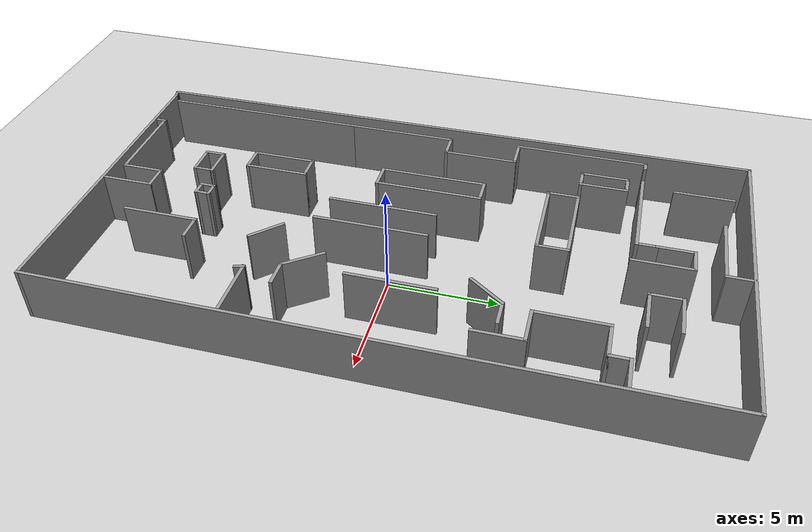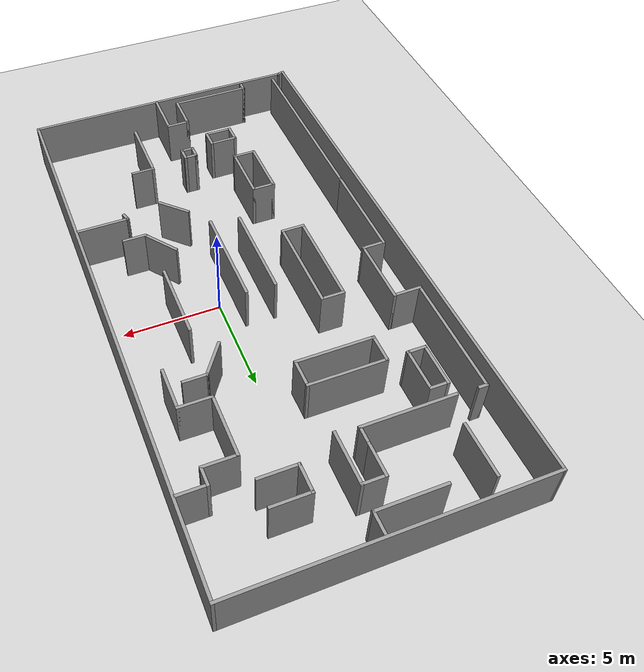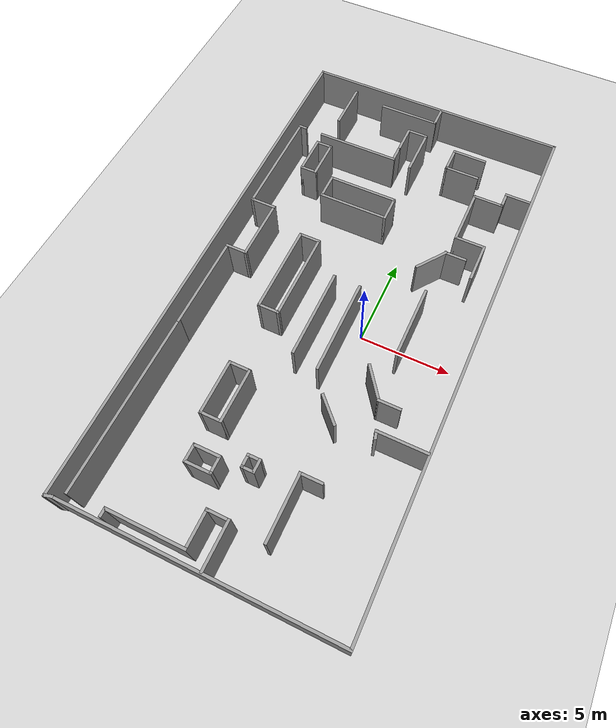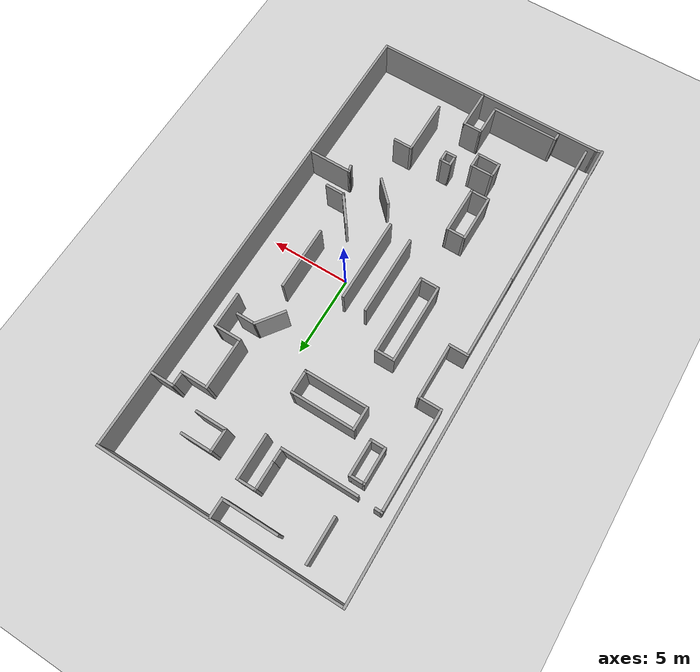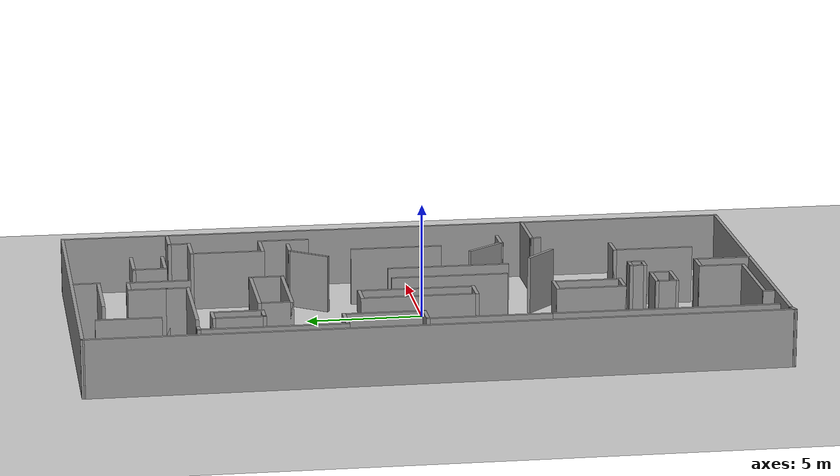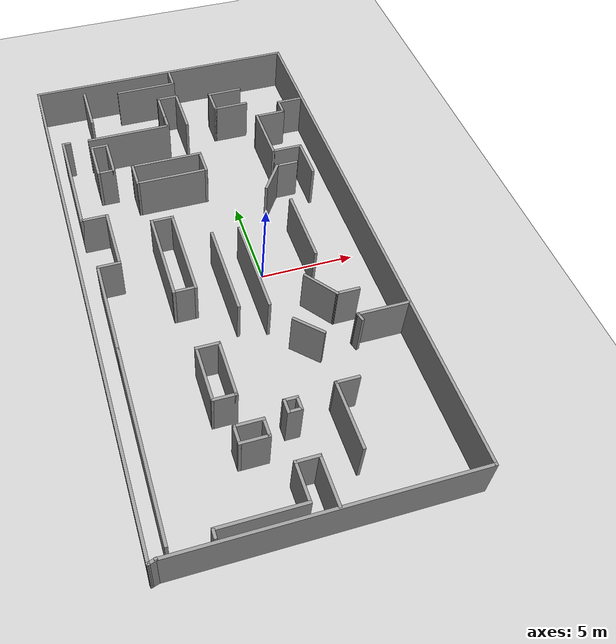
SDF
<sdf version="1.7">
 <world name="default">
  <light name="sun" type="directional">
   <pose>0 0 10 0 -0 0</pose>
   <diffuse>0.8 0.8 0.8 1</diffuse>
   <specular>0.2 0.2 0.2 1</specular>
   <attenuation>
    <range>1000</range>
    <constant>0.9</constant>
    <linear>0.01</linear>
    <quadratic>0.001</quadratic>
   </attenuation>
   <direction>-0.5 0.1 -0.9</direction>
   <spot><inner_angle>0</inner_angle><outer_angle>0</outer_angle><falloff>0</falloff></spot>
  </light>
  <model name="ground_plane">
   <static>1</static>
   <link name="link">
    <collision name="collision">
     <geometry><plane><normal>0 0 1</normal><size>100 100</size></plane></geometry>
     <surface><friction><ode><mu>100</mu><mu2>50</mu2></ode></friction></surface>
    </collision>
    <visual name="visual">
     <cast_shadows>0</cast_shadows>
     <geometry><plane><normal>0 0 1</normal><size>100 100</size></plane></geometry>
     <material>
      <script><uri>file://media/materials/scripts/gazebo.material</uri><name>Gazebo/Grey</name></script>
     </material>
    </visual>
   </link>
  </model>
  <gravity>0 0 -9.8</gravity>
  <magnetic_field>6e-06 2.3e-05 -4.2e-05</magnetic_field>
  <atmosphere type="adiabatic"/>
  <physics type="ode">
   <max_step_size>0.001</max_step_size>
   <real_time_factor>1</real_time_factor>
   <real_time_update_rate>1000</real_time_update_rate>
  </physics>
  <scene><ambient>0.4 0.4 0.4 1</ambient><background>0.7 0.7 0.7 1</background><shadows>1</shadows></scene>
  <audio><device>default</device></audio>
  <spherical_coordinates>
   <surface_model>EARTH_WGS84</surface_model>
   <latitude_deg>0</latitude_deg>
   <longitude_deg>0</longitude_deg>
   <elevation>0</elevation>
   <heading_deg>0</heading_deg>
  </spherical_coordinates>
  <model name="factory2">
   <pose>-1.85262 0.4469 0 0 -0 0</pose>
   <link name="Wall_0">
    <collision name="Wall_0_Collision">
     <geometry><box><size>15.25 0.15 2.5</size></box></geometry>
     <pose>0 0 1.25 0 -0 0</pose>
    </collision>
    <visual name="Wall_0_Visual">
     <pose>0 0 1.25 0 -0 0</pose>
     <geometry><box><size>15.25 0.15 2.5</size></box></geometry>
     <material>
      <script><uri>file://media/materials/scripts/gazebo.material</uri><name>Gazebo/Grey</name></script>
      <ambient>1 1 1 1</ambient>
     </material>
     <meta><layer>0</layer></meta>
    </visual>
    <pose>0.000205 14.7285 0 0 -0 0</pose>
   </link>
   <link name="Wall_1">
    <collision name="Wall_1_Collision">
     <geometry><box><size>29.5 0.15 2.5</size></box></geometry>
     <pose>0 0 1.25 0 -0 0</pose>
    </collision>
    <visual name="Wall_1_Visual">
     <pose>0 0 1.25 0 -0 0</pose>
     <geometry><box><size>29.5 0.15 2.5</size></box></geometry>
     <material>
      <script><uri>file://media/materials/scripts/gazebo.material</uri><name>Gazebo/Grey</name></script>
      <ambient>1 1 1 1</ambient>
     </material>
     <meta><layer>0</layer></meta>
    </visual>
    <pose>7.55021 0.053515 0 0 -0 -1.5708</pose>
   </link>
   <link name="Wall_11">
    <collision name="Wall_11_Collision">
     <geometry><box><size>2.75 0.15 2.5</size></box></geometry>
     <pose>0 0 1.25 0 -0 0</pose>
    </collision>
    <visual name="Wall_11_Visual">
     <pose>0 0 1.25 0 -0 0</pose>
     <geometry><box><size>2.75 0.15 2.5</size></box></geometry>
     <material>
      <script><uri>file://media/materials/scripts/gazebo.material</uri><name>Gazebo/Grey</name></script>
      <ambient>1 1 1 1</ambient>
     </material>
     <meta><layer>0</layer></meta>
    </visual>
    <pose>-4.89928 12.6777 0 0 -0 -1.5708</pose>
   </link>
   <link name="Wall_13">
    <collision name="Wall_13_Collision">
     <geometry><box><size>1.25 0.15 2.5</size></box></geometry>
     <pose>0 0 1.25 0 -0 0</pose>
    </collision>
    <visual name="Wall_13_Visual">
     <pose>0 0 1.25 0 -0 0</pose>
     <geometry><box><size>1.25 0.15 2.5</size></box></geometry>
     <material>
      <script><uri>file://media/materials/scripts/gazebo.material</uri><name>Gazebo/Grey</name></script>
      <ambient>1 1 1 1</ambient>
     </material>
     <meta><layer>0</layer></meta>
    </visual>
    <pose>-0.180831 12.3469 0 0 -0 3.14159</pose>
   </link>
   <link name="Wall_14">
    <collision name="Wall_14_Collision">
     <geometry><box><size>1.75 0.15 2.5</size></box></geometry>
     <pose>0 0 1.25 0 -0 0</pose>
    </collision>
    <visual name="Wall_14_Visual">
     <pose>0 0 1.25 0 -0 0</pose>
     <geometry><box><size>1.75 0.15 2.5</size></box></geometry>
     <material>
      <script><uri>file://media/materials/scripts/gazebo.material</uri><name>Gazebo/Grey</name></script>
      <ambient>1 1 1 1</ambient>
     </material>
     <meta><layer>0</layer></meta>
    </visual>
    <pose>-0.730831 11.5469 0 0 -0 -1.5708</pose>
   </link>
   <link name="Wall_15">
    <collision name="Wall_15_Collision">
     <geometry><box><size>1 0.15 2.5</size></box></geometry>
     <pose>0 0 1.25 0 -0 0</pose>
    </collision>
    <visual name="Wall_15_Visual">
     <pose>0 0 1.25 0 -0 0</pose>
     <geometry><box><size>1 0.15 2.5</size></box></geometry>
     <material>
      <script><uri>file://media/materials/scripts/gazebo.material</uri><name>Gazebo/Grey</name></script>
      <ambient>1 1 1 1</ambient>
     </material>
     <meta><layer>0</layer></meta>
    </visual>
    <pose>-0.730831 10.3219 0 0 -0 -1.5708</pose>
   </link>
   <link name="Wall_16">
    <collision name="Wall_16_Collision">
     <geometry><box><size>4.75 0.15 2.5</size></box></geometry>
     <pose>0 0 1.25 0 -0 0</pose>
    </collision>
    <visual name="Wall_16_Visual">
     <pose>0 0 1.25 0 -0 0</pose>
     <geometry><box><size>4.75 0.15 2.5</size></box></geometry>
     <material>
      <script><uri>file://media/materials/scripts/gazebo.material</uri><name>Gazebo/Grey</name></script>
      <ambient>1 1 1 1</ambient>
     </material>
     <meta><layer>0</layer></meta>
    </visual>
    <pose>-3.03083 9.89686 0 0 -0 3.14159</pose>
   </link>
   <link name="Wall_18">
    <collision name="Wall_18_Collision">
     <geometry><box><size>2.75 0.15 2.5</size></box></geometry>
     <pose>0 0 1.25 0 -0 0</pose>
    </collision>
    <visual name="Wall_18_Visual">
     <pose>0 0 1.25 0 -0 0</pose>
     <geometry><box><size>2.75 0.15 2.5</size></box></geometry>
     <material>
      <script><uri>file://media/materials/scripts/gazebo.material</uri><name>Gazebo/Grey</name></script>
      <ambient>1 1 1 1</ambient>
     </material>
     <meta><layer>0</layer></meta>
    </visual>
    <pose>0.369169 11.0469 0 0 -0 -1.5708</pose>
   </link>
   <link name="Wall_2">
    <collision name="Wall_2_Collision">
     <geometry><box><size>14.75 0.15 2.5</size></box></geometry>
     <pose>0 0 1.25 0 -0 0</pose>
    </collision>
    <visual name="Wall_2_Visual">
     <pose>0 0 1.25 0 -0 0</pose>
     <geometry><box><size>14.75 0.15 2.5</size></box></geometry>
     <material>
      <script><uri>file://media/materials/scripts/gazebo.material</uri><name>Gazebo/Grey</name></script>
      <ambient>1 1 1 1</ambient>
     </material>
     <meta><layer>0</layer></meta>
    </visual>
    <pose>0.250205 -14.6215 0 0 -0 3.14159</pose>
   </link>
   <link name="Wall_20">
    <collision name="Wall_20_Collision">
     <geometry><box><size>2 0.15 2.5</size></box></geometry>
     <pose>0 0 1.25 0 -0 0</pose>
    </collision>
    <visual name="Wall_20_Visual">
     <pose>0 0 1.25 0 -0 0</pose>
     <geometry><box><size>2 0.15 2.5</size></box></geometry>
     <material>
      <script><uri>file://media/materials/scripts/gazebo.material</uri><name>Gazebo/Grey</name></script>
      <ambient>1 1 1 1</ambient>
     </material>
     <meta><layer>0</layer></meta>
    </visual>
    <pose>3.24721 11.9486 0 0 -0 3.14159</pose>
   </link>
   <link name="Wall_21">
    <collision name="Wall_21_Collision">
     <geometry><box><size>1.5 0.15 2.5</size></box></geometry>
     <pose>0 0 1.25 0 -0 0</pose>
    </collision>
    <visual name="Wall_21_Visual">
     <pose>0 0 1.25 0 -0 0</pose>
     <geometry><box><size>1.5 0.15 2.5</size></box></geometry>
     <material>
      <script><uri>file://media/materials/scripts/gazebo.material</uri><name>Gazebo/Grey</name></script>
      <ambient>1 1 1 1</ambient>
     </material>
     <meta><layer>0</layer></meta>
    </visual>
    <pose>2.32221 11.2736 0 0 -0 -1.5708</pose>
   </link>
   <link name="Wall_22">
    <collision name="Wall_22_Collision">
     <geometry><box><size>2 0.15 2.5</size></box></geometry>
     <pose>0 0 1.25 0 -0 0</pose>
    </collision>
    <visual name="Wall_22_Visual">
     <pose>0 0 1.25 0 -0 0</pose>
     <geometry><box><size>2 0.15 2.5</size></box></geometry>
     <material>
      <script><uri>file://media/materials/scripts/gazebo.material</uri><name>Gazebo/Grey</name></script>
      <ambient>1 1 1 1</ambient>
     </material>
     <meta><layer>0</layer></meta>
    </visual>
    <pose>3.24721 10.5986 0 0 -0 0</pose>
   </link>
   <link name="Wall_24">
    <collision name="Wall_24_Collision">
     <geometry><box><size>1.5 0.15 2.5</size></box></geometry>
     <pose>0 0 1.25 0 -0 0</pose>
    </collision>
    <visual name="Wall_24_Visual">
     <pose>0 0 1.25 0 -0 0</pose>
     <geometry><box><size>1.5 0.15 2.5</size></box></geometry>
     <material>
      <script><uri>file://media/materials/scripts/gazebo.material</uri><name>Gazebo/Grey</name></script>
      <ambient>1 1 1 1</ambient>
     </material>
     <meta><layer>0</layer></meta>
    </visual>
    <pose>6.76561 10.1328 0 0 -0 3.14159</pose>
   </link>
   <link name="Wall_25">
    <collision name="Wall_25_Collision">
     <geometry><box><size>1 0.15 2.5</size></box></geometry>
     <pose>0 0 1.25 0 -0 0</pose>
    </collision>
    <visual name="Wall_25_Visual">
     <pose>0 0 1.25 0 -0 0</pose>
     <geometry><box><size>1 0.15 2.5</size></box></geometry>
     <material>
      <script><uri>file://media/materials/scripts/gazebo.material</uri><name>Gazebo/Grey</name></script>
      <ambient>1 1 1 1</ambient>
     </material>
     <meta><layer>0</layer></meta>
    </visual>
    <pose>6.09061 9.70783 0 0 -0 -1.5708</pose>
   </link>
   <link name="Wall_26">
    <collision name="Wall_26_Collision">
     <geometry><box><size>1.75 0.15 2.5</size></box></geometry>
     <pose>0 0 1.25 0 -0 0</pose>
    </collision>
    <visual name="Wall_26_Visual">
     <pose>0 0 1.25 0 -0 0</pose>
     <geometry><box><size>1.75 0.15 2.5</size></box></geometry>
     <material>
      <script><uri>file://media/materials/scripts/gazebo.material</uri><name>Gazebo/Grey</name></script>
      <ambient>1 1 1 1</ambient>
     </material>
     <meta><layer>0</layer></meta>
    </visual>
    <pose>5.29061 9.28283 0 0 -0 3.14159</pose>
   </link>
   <link name="Wall_27">
    <collision name="Wall_27_Collision">
     <geometry><box><size>3.25 0.15 2.5</size></box></geometry>
     <pose>0 0 1.25 0 -0 0</pose>
    </collision>
    <visual name="Wall_27_Visual">
     <pose>0 0 1.25 0 -0 0</pose>
     <geometry><box><size>3.25 0.15 2.5</size></box></geometry>
     <material>
      <script><uri>file://media/materials/scripts/gazebo.material</uri><name>Gazebo/Grey</name></script>
      <ambient>1 1 1 1</ambient>
     </material>
     <meta><layer>0</layer></meta>
    </visual>
    <pose>4.49061 7.73283 0 0 -0 -1.5708</pose>
   </link>
   <link name="Wall_28">
    <collision name="Wall_28_Collision">
     <geometry><box><size>1.75 0.15 2.5</size></box></geometry>
     <pose>0 0 1.25 0 -0 0</pose>
    </collision>
    <visual name="Wall_28_Visual">
     <pose>0 0 1.25 0 -0 0</pose>
     <geometry><box><size>1.75 0.15 2.5</size></box></geometry>
     <material>
      <script><uri>file://media/materials/scripts/gazebo.material</uri><name>Gazebo/Grey</name></script>
      <ambient>1 1 1 1</ambient>
     </material>
     <meta><layer>0</layer></meta>
    </visual>
    <pose>5.29061 6.18283 0 0 -0 0</pose>
   </link>
   <link name="Wall_29">
    <collision name="Wall_29_Collision">
     <geometry><box><size>2.25 0.15 2.5</size></box></geometry>
     <pose>0 0 1.25 0 -0 0</pose>
    </collision>
    <visual name="Wall_29_Visual">
     <pose>0 0 1.25 0 -0 0</pose>
     <geometry><box><size>2.25 0.15 2.5</size></box></geometry>
     <material>
      <script><uri>file://media/materials/scripts/gazebo.material</uri><name>Gazebo/Grey</name></script>
      <ambient>1 1 1 1</ambient>
     </material>
     <meta><layer>0</layer></meta>
    </visual>
    <pose>6.09061 5.13283 0 0 -0 -1.5708</pose>
   </link>
   <link name="Wall_31">
    <collision name="Wall_31_Collision">
     <geometry><box><size>1.25 0.15 2.5</size></box></geometry>
     <pose>0 0 1.25 0 -0 0</pose>
    </collision>
    <visual name="Wall_31_Visual">
     <pose>0 0 1.25 0 -0 0</pose>
     <geometry><box><size>1.25 0.15 2.5</size></box></geometry>
     <material>
      <script><uri>file://media/materials/scripts/gazebo.material</uri><name>Gazebo/Grey</name></script>
      <ambient>1 1 1 1</ambient>
     </material>
     <meta><layer>0</layer></meta>
    </visual>
    <pose>4.88461 4.99678 0 0 -0 3.14159</pose>
   </link>
   <link name="Wall_32">
    <collision name="Wall_32_Collision">
     <geometry><box><size>1.97339 0.15 2.5</size></box></geometry>
     <pose>0 0 1.25 0 -0 0</pose>
    </collision>
    <visual name="Wall_32_Visual">
     <pose>0 0 1.25 0 -0 0</pose>
     <geometry><box><size>1.97339 0.15 2.5</size></box></geometry>
     <material>
      <script><uri>file://media/materials/scripts/gazebo.material</uri><name>Gazebo/Grey</name></script>
      <ambient>1 1 1 1</ambient>
     </material>
     <meta><layer>0</layer></meta>
    </visual>
    <pose>3.79514 4.26182 0 0 -0 -2.20398</pose>
   </link>
   <link name="Wall_34">
    <collision name="Wall_34_Collision">
     <geometry><box><size>4 0.15 2.5</size></box></geometry>
     <pose>0 0 1.25 0 -0 0</pose>
    </collision>
    <visual name="Wall_34_Visual">
     <pose>0 0 1.25 0 -0 0</pose>
     <geometry><box><size>4 0.15 2.5</size></box></geometry>
     <material>
      <script><uri>file://media/materials/scripts/gazebo.material</uri><name>Gazebo/Grey</name></script>
      <ambient>1 1 1 1</ambient>
     </material>
     <meta><layer>0</layer></meta>
    </visual>
    <pose>4.22409 0.356764 0 0 -0 -1.5708</pose>
   </link>
   <link name="Wall_36">
    <collision name="Wall_36_Collision">
     <geometry><box><size>2.02803 0.15 2.5</size></box></geometry>
     <pose>0 0 1.25 0 -0 0</pose>
    </collision>
    <visual name="Wall_36_Visual">
     <pose>0 0 1.25 0 -0 0</pose>
     <geometry><box><size>2.02803 0.15 2.5</size></box></geometry>
     <material>
      <script><uri>file://media/materials/scripts/gazebo.material</uri><name>Gazebo/Grey</name></script>
      <ambient>1 1 1 1</ambient>
     </material>
     <meta><layer>0</layer></meta>
    </visual>
    <pose>3.80041 -3.55466 0 0 -0 -0.929137</pose>
   </link>
   <link name="Wall_37">
    <collision name="Wall_37_Collision">
     <geometry><box><size>1.2573 0.15 2.5</size></box></geometry>
     <pose>0 0 1.25 0 -0 0</pose>
    </collision>
    <visual name="Wall_37_Visual">
     <pose>0 0 1.25 0 -0 0</pose>
     <geometry><box><size>1.2573 0.15 2.5</size></box></geometry>
     <material>
      <script><uri>file://media/materials/scripts/gazebo.material</uri><name>Gazebo/Grey</name></script>
      <ambient>1 1 1 1</ambient>
     </material>
     <meta><layer>0</layer></meta>
    </visual>
    <pose>4.91581 -4.30691 0 0 -0 0</pose>
   </link>
   <link name="Wall_39">
    <collision name="Wall_39_Collision">
     <geometry><box><size>5.25 0.15 2.5</size></box></geometry>
     <pose>0 0 1.25 0 -0 0</pose>
    </collision>
    <visual name="Wall_39_Visual">
     <pose>0 0 1.25 0 -0 0</pose>
     <geometry><box><size>5.25 0.15 2.5</size></box></geometry>
     <material>
      <script><uri>file://media/materials/scripts/gazebo.material</uri><name>Gazebo/Grey</name></script>
      <ambient>1 1 1 1</ambient>
     </material>
     <meta><layer>0</layer></meta>
    </visual>
    <pose>0.990278 -1.46146 0 0 -0 -1.5708</pose>
   </link>
   <link name="Wall_4">
    <collision name="Wall_4_Collision">
     <geometry><box><size>0.5 0.15 2.5</size></box></geometry>
     <pose>0 0 1.25 0 -0 0</pose>
    </collision>
    <visual name="Wall_4_Visual">
     <pose>0 0 1.25 0 -0 0</pose>
     <geometry><box><size>0.5 0.15 2.5</size></box></geometry>
     <material>
      <script><uri>file://media/materials/scripts/gazebo.material</uri><name>Gazebo/Grey</name></script>
      <ambient>1 1 1 1</ambient>
     </material>
     <meta><layer>0</layer></meta>
    </visual>
    <pose>-7.21883 -14.6668 0 0 -0 -2.87979</pose>
   </link>
   <link name="Wall_41">
    <collision name="Wall_41_Collision">
     <geometry><box><size>5 0.15 2.5</size></box></geometry>
     <pose>0 0 1.25 0 -0 0</pose>
    </collision>
    <visual name="Wall_41_Visual">
     <pose>0 0 1.25 0 -0 0</pose>
     <geometry><box><size>5 0.15 2.5</size></box></geometry>
     <material>
      <script><uri>file://media/materials/scripts/gazebo.material</uri><name>Gazebo/Grey</name></script>
      <ambient>1 1 1 1</ambient>
     </material>
     <meta><layer>0</layer></meta>
    </visual>
    <pose>-0.479636 -1.30187 0 0 -0 -1.5708</pose>
   </link>
   <link name="Wall_43">
    <collision name="Wall_43_Collision">
     <geometry><box><size>1.25 0.15 2.5</size></box></geometry>
     <pose>0 0 1.25 0 -0 0</pose>
    </collision>
    <visual name="Wall_43_Visual">
     <pose>0 0 1.25 0 -0 0</pose>
     <geometry><box><size>1.25 0.15 2.5</size></box></geometry>
     <material>
      <script><uri>file://media/materials/scripts/gazebo.material</uri><name>Gazebo/Grey</name></script>
      <ambient>1 1 1 1</ambient>
     </material>
     <meta><layer>0</layer></meta>
    </visual>
    <pose>-2.73112 2.80056 0 0 -0 0</pose>
   </link>
   <link name="Wall_44">
    <collision name="Wall_44_Collision">
     <geometry><box><size>5 0.15 2.5</size></box></geometry>
     <pose>0 0 1.25 0 -0 0</pose>
    </collision>
    <visual name="Wall_44_Visual">
     <pose>0 0 1.25 0 -0 0</pose>
     <geometry><box><size>5 0.15 2.5</size></box></geometry>
     <material>
      <script><uri>file://media/materials/scripts/gazebo.material</uri><name>Gazebo/Grey</name></script>
      <ambient>1 1 1 1</ambient>
     </material>
     <meta><layer>0</layer></meta>
    </visual>
    <pose>-2.18112 0.375557 0 0 -0 -1.5708</pose>
   </link>
   <link name="Wall_45">
    <collision name="Wall_45_Collision">
     <geometry><box><size>1.25 0.15 2.5</size></box></geometry>
     <pose>0 0 1.25 0 -0 0</pose>
    </collision>
    <visual name="Wall_45_Visual">
     <pose>0 0 1.25 0 -0 0</pose>
     <geometry><box><size>1.25 0.15 2.5</size></box></geometry>
     <material>
      <script><uri>file://media/materials/scripts/gazebo.material</uri><name>Gazebo/Grey</name></script>
      <ambient>1 1 1 1</ambient>
     </material>
     <meta><layer>0</layer></meta>
    </visual>
    <pose>-2.73112 -2.04944 0 0 -0 3.14159</pose>
   </link>
   <link name="Wall_46">
    <collision name="Wall_46_Collision">
     <geometry><box><size>5 0.15 2.5</size></box></geometry>
     <pose>0 0 1.25 0 -0 0</pose>
    </collision>
    <visual name="Wall_46_Visual">
     <pose>0 0 1.25 0 -0 0</pose>
     <geometry><box><size>5 0.15 2.5</size></box></geometry>
     <material>
      <script><uri>file://media/materials/scripts/gazebo.material</uri><name>Gazebo/Grey</name></script>
      <ambient>1 1 1 1</ambient>
     </material>
     <meta><layer>0</layer></meta>
    </visual>
    <pose>-3.28112 0.375557 0 0 -0 1.5708</pose>
   </link>
   <link name="Wall_48">
    <collision name="Wall_48_Collision">
     <geometry><box><size>1.5 0.15 2.5</size></box></geometry>
     <pose>0 0 1.25 0 -0 0</pose>
    </collision>
    <visual name="Wall_48_Visual">
     <pose>0 0 1.25 0 -0 0</pose>
     <geometry><box><size>1.5 0.15 2.5</size></box></geometry>
     <material>
      <script><uri>file://media/materials/scripts/gazebo.material</uri><name>Gazebo/Grey</name></script>
      <ambient>1 1 1 1</ambient>
     </material>
     <meta><layer>0</layer></meta>
    </visual>
    <pose>0.454192 6.44997 0 0 -0 1.5708</pose>
   </link>
   <link name="Wall_49">
    <collision name="Wall_49_Collision">
     <geometry><box><size>4 0.15 2.5</size></box></geometry>
     <pose>0 0 1.25 0 -0 0</pose>
    </collision>
    <visual name="Wall_49_Visual">
     <pose>0 0 1.25 0 -0 0</pose>
     <geometry><box><size>4 0.15 2.5</size></box></geometry>
     <material>
      <script><uri>file://media/materials/scripts/gazebo.material</uri><name>Gazebo/Grey</name></script>
      <ambient>1 1 1 1</ambient>
     </material>
     <meta><layer>0</layer></meta>
    </visual>
    <pose>-1.47081 7.12497 0 0 -0 3.14159</pose>
   </link>
   <link name="Wall_50">
    <collision name="Wall_50_Collision">
     <geometry><box><size>1.5 0.15 2.5</size></box></geometry>
     <pose>0 0 1.25 0 -0 0</pose>
    </collision>
    <visual name="Wall_50_Visual">
     <pose>0 0 1.25 0 -0 0</pose>
     <geometry><box><size>1.5 0.15 2.5</size></box></geometry>
     <material>
      <script><uri>file://media/materials/scripts/gazebo.material</uri><name>Gazebo/Grey</name></script>
      <ambient>1 1 1 1</ambient>
     </material>
     <meta><layer>0</layer></meta>
    </visual>
    <pose>-3.39581 6.44997 0 0 -0 -1.5708</pose>
   </link>
   <link name="Wall_51">
    <collision name="Wall_51_Collision">
     <geometry><box><size>4 0.15 2.5</size></box></geometry>
     <pose>0 0 1.25 0 -0 0</pose>
    </collision>
    <visual name="Wall_51_Visual">
     <pose>0 0 1.25 0 -0 0</pose>
     <geometry><box><size>4 0.15 2.5</size></box></geometry>
     <material>
      <script><uri>file://media/materials/scripts/gazebo.material</uri><name>Gazebo/Grey</name></script>
      <ambient>1 1 1 1</ambient>
     </material>
     <meta><layer>0</layer></meta>
    </visual>
    <pose>-1.47081 5.77497 0 0 -0 0</pose>
   </link>
   <link name="Wall_53">
    <collision name="Wall_53_Collision">
     <geometry><box><size>2.25 0.15 2.5</size></box></geometry>
     <pose>0 0 1.25 0 -0 0</pose>
    </collision>
    <visual name="Wall_53_Visual">
     <pose>0 0 1.25 0 -0 0</pose>
     <geometry><box><size>2.25 0.15 2.5</size></box></geometry>
     <material>
      <script><uri>file://media/materials/scripts/gazebo.material</uri><name>Gazebo/Grey</name></script>
      <ambient>1 1 1 1</ambient>
     </material>
     <meta><layer>0</layer></meta>
    </visual>
    <pose>-4.45705 8.1663 0 0 -0 -1.5708</pose>
   </link>
   <link name="Wall_54">
    <collision name="Wall_54_Collision">
     <geometry><box><size>1 0.15 2.5</size></box></geometry>
     <pose>0 0 1.25 0 -0 0</pose>
    </collision>
    <visual name="Wall_54_Visual">
     <pose>0 0 1.25 0 -0 0</pose>
     <geometry><box><size>1 0.15 2.5</size></box></geometry>
     <material>
      <script><uri>file://media/materials/scripts/gazebo.material</uri><name>Gazebo/Grey</name></script>
      <ambient>1 1 1 1</ambient>
     </material>
     <meta><layer>0</layer></meta>
    </visual>
    <pose>-4.88205 7.1163 0 0 -0 3.14159</pose>
   </link>
   <link name="Wall_55">
    <collision name="Wall_55_Collision">
     <geometry><box><size>2.25 0.15 2.5</size></box></geometry>
     <pose>0 0 1.25 0 -0 0</pose>
    </collision>
    <visual name="Wall_55_Visual">
     <pose>0 0 1.25 0 -0 0</pose>
     <geometry><box><size>2.25 0.15 2.5</size></box></geometry>
     <material>
      <script><uri>file://media/materials/scripts/gazebo.material</uri><name>Gazebo/Grey</name></script>
      <ambient>1 1 1 1</ambient>
     </material>
     <meta><layer>0</layer></meta>
    </visual>
    <pose>-5.30705 8.1663 0 0 -0 1.5708</pose>
   </link>
   <link name="Wall_56">
    <collision name="Wall_56_Collision">
     <geometry><box><size>1 0.15 2.5</size></box></geometry>
     <pose>0 0 1.25 0 -0 0</pose>
    </collision>
    <visual name="Wall_56_Visual">
     <pose>0 0 1.25 0 -0 0</pose>
     <geometry><box><size>1 0.15 2.5</size></box></geometry>
     <material>
      <script><uri>file://media/materials/scripts/gazebo.material</uri><name>Gazebo/Grey</name></script>
      <ambient>1 1 1 1</ambient>
     </material>
     <meta><layer>0</layer></meta>
    </visual>
    <pose>-4.88205 9.2163 0 0 -0 0</pose>
   </link>
   <link name="Wall_58">
    <collision name="Wall_58_Collision">
     <geometry><box><size>0.5 0.15 2.5</size></box></geometry>
     <pose>0 0 1.25 0 -0 0</pose>
    </collision>
    <visual name="Wall_58_Visual">
     <pose>0 0 1.25 0 -0 0</pose>
     <geometry><box><size>0.5 0.15 2.5</size></box></geometry>
     <material>
      <script><uri>file://media/materials/scripts/gazebo.material</uri><name>Gazebo/Grey</name></script>
      <ambient>1 1 1 1</ambient>
     </material>
     <meta><layer>0</layer></meta>
    </visual>
    <pose>-6.63225 9.94982 0 0 -0 3.14159</pose>
   </link>
   <link name="Wall_59">
    <collision name="Wall_59_Collision">
     <geometry><box><size>6.25 0.15 2.5</size></box></geometry>
     <pose>0 0 1.25 0 -0 0</pose>
    </collision>
    <visual name="Wall_59_Visual">
     <pose>0 0 1.25 0 -0 0</pose>
     <geometry><box><size>6.25 0.15 2.5</size></box></geometry>
     <material>
      <script><uri>file://media/materials/scripts/gazebo.material</uri><name>Gazebo/Grey</name></script>
      <ambient>1 1 1 1</ambient>
     </material>
     <meta><layer>0</layer></meta>
    </visual>
    <pose>-6.80725 6.89982 0 0 -0 -1.5708</pose>
   </link>
   <link name="Wall_6">
    <collision name="Wall_6_Collision">
     <geometry><box><size>29.591 0.15 2.5</size></box></geometry>
     <pose>0 0 1.25 0 -0 0</pose>
    </collision>
    <visual name="Wall_6_Visual">
     <pose>0 0 1.25 0 -0 0</pose>
     <geometry><box><size>29.591 0.15 2.5</size></box></geometry>
     <material>
      <script><uri>file://media/materials/scripts/gazebo.material</uri><name>Gazebo/Grey</name></script>
      <ambient>1 1 1 1</ambient>
     </material>
     <meta><layer>0</layer></meta>
    </visual>
    <pose>-7.46883 0.008221 0 0 -0 1.5763</pose>
   </link>
   <link name="Wall_60">
    <collision name="Wall_60_Collision">
     <geometry><box><size>1.5 0.15 2.5</size></box></geometry>
     <pose>0 0 1.25 0 -0 0</pose>
    </collision>
    <visual name="Wall_60_Visual">
     <pose>0 0 1.25 0 -0 0</pose>
     <geometry><box><size>1.5 0.15 2.5</size></box></geometry>
     <material>
      <script><uri>file://media/materials/scripts/gazebo.material</uri><name>Gazebo/Grey</name></script>
      <ambient>1 1 1 1</ambient>
     </material>
     <meta><layer>0</layer></meta>
    </visual>
    <pose>-6.13225 3.84982 0 0 -0 0</pose>
   </link>
   <link name="Wall_61">
    <collision name="Wall_61_Collision">
     <geometry><box><size>3.5 0.15 2.5</size></box></geometry>
     <pose>0 0 1.25 0 -0 0</pose>
    </collision>
    <visual name="Wall_61_Visual">
     <pose>0 0 1.25 0 -0 0</pose>
     <geometry><box><size>3.5 0.15 2.5</size></box></geometry>
     <material>
      <script><uri>file://media/materials/scripts/gazebo.material</uri><name>Gazebo/Grey</name></script>
      <ambient>1 1 1 1</ambient>
     </material>
     <meta><layer>0</layer></meta>
    </visual>
    <pose>-5.45725 2.17482 0 0 -0 -1.5708</pose>
   </link>
   <link name="Wall_62">
    <collision name="Wall_62_Collision">
     <geometry><box><size>1.25 0.15 2.5</size></box></geometry>
     <pose>0 0 1.25 0 -0 0</pose>
    </collision>
    <visual name="Wall_62_Visual">
     <pose>0 0 1.25 0 -0 0</pose>
     <geometry><box><size>1.25 0.15 2.5</size></box></geometry>
     <material>
      <script><uri>file://media/materials/scripts/gazebo.material</uri><name>Gazebo/Grey</name></script>
      <ambient>1 1 1 1</ambient>
     </material>
     <meta><layer>0</layer></meta>
    </visual>
    <pose>-6.00725 0.499821 0 0 -0 3.14159</pose>
   </link>
   <link name="Wall_64">
    <collision name="Wall_64_Collision">
     <geometry><box><size>5.25 0.15 2.5</size></box></geometry>
     <pose>0 0 1.25 0 -0 0</pose>
    </collision>
    <visual name="Wall_64_Visual">
     <pose>0 0 1.25 0 -0 0</pose>
     <geometry><box><size>5.25 0.15 2.5</size></box></geometry>
     <material>
      <script><uri>file://media/materials/scripts/gazebo.material</uri><name>Gazebo/Grey</name></script>
      <ambient>1 1 1 1</ambient>
     </material>
     <meta><layer>0</layer></meta>
    </visual>
    <pose>-6.55725 -2.05018 0 0 -0 -1.5708</pose>
   </link>
   <link name="Wall_66">
    <collision name="Wall_66_Collision">
     <geometry><box><size>9.75 0.15 2.5</size></box></geometry>
     <pose>0 0 1.25 0 -0 0</pose>
    </collision>
    <visual name="Wall_66_Visual">
     <pose>0 0 1.25 0 -0 0</pose>
     <geometry><box><size>9.75 0.15 2.5</size></box></geometry>
     <material>
      <script><uri>file://media/materials/scripts/gazebo.material</uri><name>Gazebo/Grey</name></script>
      <ambient>1 1 1 1</ambient>
     </material>
     <meta><layer>0</layer></meta>
    </visual>
    <pose>-6.55725 -9.40018 0 0 -0 -1.5708</pose>
   </link>
   <link name="Wall_68">
    <collision name="Wall_68_Collision">
     <geometry><box><size>3 0.15 2.5</size></box></geometry>
     <pose>0 0 1.25 0 -0 0</pose>
    </collision>
    <visual name="Wall_68_Visual">
     <pose>0 0 1.25 0 -0 0</pose>
     <geometry><box><size>3 0.15 2.5</size></box></geometry>
     <material>
      <script><uri>file://media/materials/scripts/gazebo.material</uri><name>Gazebo/Grey</name></script>
      <ambient>1 1 1 1</ambient>
     </material>
     <meta><layer>0</layer></meta>
    </visual>
    <pose>-1.95984 -6.96626 0 0 -0 -1.5708</pose>
   </link>
   <link name="Wall_69">
    <collision name="Wall_69_Collision">
     <geometry><box><size>1.25 0.15 2.5</size></box></geometry>
     <pose>0 0 1.25 0 -0 0</pose>
    </collision>
    <visual name="Wall_69_Visual">
     <pose>0 0 1.25 0 -0 0</pose>
     <geometry><box><size>1.25 0.15 2.5</size></box></geometry>
     <material>
      <script><uri>file://media/materials/scripts/gazebo.material</uri><name>Gazebo/Grey</name></script>
      <ambient>1 1 1 1</ambient>
     </material>
     <meta><layer>0</layer></meta>
    </visual>
    <pose>-2.50984 -8.39126 0 0 -0 3.14159</pose>
   </link>
   <link name="Wall_70">
    <collision name="Wall_70_Collision">
     <geometry><box><size>3 0.15 2.5</size></box></geometry>
     <pose>0 0 1.25 0 -0 0</pose>
    </collision>
    <visual name="Wall_70_Visual">
     <pose>0 0 1.25 0 -0 0</pose>
     <geometry><box><size>3 0.15 2.5</size></box></geometry>
     <material>
      <script><uri>file://media/materials/scripts/gazebo.material</uri><name>Gazebo/Grey</name></script>
      <ambient>1 1 1 1</ambient>
     </material>
     <meta><layer>0</layer></meta>
    </visual>
    <pose>-3.05984 -6.96626 0 0 -0 1.5708</pose>
   </link>
   <link name="Wall_71">
    <collision name="Wall_71_Collision">
     <geometry><box><size>1.25 0.15 2.5</size></box></geometry>
     <pose>0 0 1.25 0 -0 0</pose>
    </collision>
    <visual name="Wall_71_Visual">
     <pose>0 0 1.25 0 -0 0</pose>
     <geometry><box><size>1.25 0.15 2.5</size></box></geometry>
     <material>
      <script><uri>file://media/materials/scripts/gazebo.material</uri><name>Gazebo/Grey</name></script>
      <ambient>1 1 1 1</ambient>
     </material>
     <meta><layer>0</layer></meta>
    </visual>
    <pose>-2.50984 -5.54126 0 0 -0 0</pose>
   </link>
   <link name="Wall_73">
    <collision name="Wall_73_Collision">
     <geometry><box><size>1.74981 0.15 2.5</size></box></geometry>
     <pose>0 0 1.25 0 -0 0</pose>
    </collision>
    <visual name="Wall_73_Visual">
     <pose>0 0 1.25 0 -0 0</pose>
     <geometry><box><size>1.74981 0.15 2.5</size></box></geometry>
     <material>
      <script><uri>file://media/materials/scripts/gazebo.material</uri><name>Gazebo/Grey</name></script>
      <ambient>1 1 1 1</ambient>
     </material>
     <meta><layer>0</layer></meta>
    </visual>
    <pose>2.39292 -5.73852 0 0 -0 -0.785398</pose>
   </link>
   <link name="Wall_75">
    <collision name="Wall_75_Collision">
     <geometry><box><size>1.25 0.15 2.5</size></box></geometry>
     <pose>0 0 1.25 0 -0 0</pose>
    </collision>
    <visual name="Wall_75_Visual">
     <pose>0 0 1.25 0 -0 0</pose>
     <geometry><box><size>1.25 0.15 2.5</size></box></geometry>
     <material>
      <script><uri>file://media/materials/scripts/gazebo.material</uri><name>Gazebo/Grey</name></script>
      <ambient>1 1 1 1</ambient>
     </material>
     <meta><layer>0</layer></meta>
    </visual>
    <pose>3.0659 -9.03925 0 0 -0 3.14159</pose>
   </link>
   <link name="Wall_76">
    <collision name="Wall_76_Collision">
     <geometry><box><size>3.5 0.15 2.5</size></box></geometry>
     <pose>0 0 1.25 0 -0 0</pose>
    </collision>
    <visual name="Wall_76_Visual">
     <pose>0 0 1.25 0 -0 0</pose>
     <geometry><box><size>3.5 0.15 2.5</size></box></geometry>
     <material>
      <script><uri>file://media/materials/scripts/gazebo.material</uri><name>Gazebo/Grey</name></script>
      <ambient>1 1 1 1</ambient>
     </material>
     <meta><layer>0</layer></meta>
    </visual>
    <pose>2.5159 -10.7142 0 0 -0 -1.5708</pose>
   </link>
   <link name="Wall_78">
    <collision name="Wall_78_Collision">
     <geometry><box><size>0.75 0.15 2.5</size></box></geometry>
     <pose>0 0 1.25 0 -0 0</pose>
    </collision>
    <visual name="Wall_78_Visual">
     <pose>0 0 1.25 0 -0 0</pose>
     <geometry><box><size>0.75 0.15 2.5</size></box></geometry>
     <material>
      <script><uri>file://media/materials/scripts/gazebo.material</uri><name>Gazebo/Grey</name></script>
      <ambient>1 1 1 1</ambient>
     </material>
     <meta><layer>0</layer></meta>
    </visual>
    <pose>-0.013592 -9.57595 0 0 -0 -1.5708</pose>
   </link>
   <link name="Wall_79">
    <collision name="Wall_79_Collision">
     <geometry><box><size>0.75 0.15 2.5</size></box></geometry>
     <pose>0 0 1.25 0 -0 0</pose>
    </collision>
    <visual name="Wall_79_Visual">
     <pose>0 0 1.25 0 -0 0</pose>
     <geometry><box><size>0.75 0.15 2.5</size></box></geometry>
     <material>
      <script><uri>file://media/materials/scripts/gazebo.material</uri><name>Gazebo/Grey</name></script>
      <ambient>1 1 1 1</ambient>
     </material>
     <meta><layer>0</layer></meta>
    </visual>
    <pose>0.286408 -9.87595 0 0 -0 0</pose>
   </link>
   <link name="Wall_8">
    <collision name="Wall_8_Collision">
     <geometry><box><size>1.25 0.15 2.5</size></box></geometry>
     <pose>0 0 1.25 0 -0 0</pose>
    </collision>
    <visual name="Wall_8_Visual">
     <pose>0 0 1.25 0 -0 0</pose>
     <geometry><box><size>1.25 0.15 2.5</size></box></geometry>
     <material>
      <script><uri>file://media/materials/scripts/gazebo.material</uri><name>Gazebo/Grey</name></script>
      <ambient>1 1 1 1</ambient>
     </material>
     <meta><layer>0</layer></meta>
    </visual>
    <pose>0.461911 14.1338 0 0 -0 -1.5708</pose>
   </link>
   <link name="Wall_80">
    <collision name="Wall_80_Collision">
     <geometry><box><size>0.75 0.15 2.5</size></box></geometry>
     <pose>0 0 1.25 0 -0 0</pose>
    </collision>
    <visual name="Wall_80_Visual">
     <pose>0 0 1.25 0 -0 0</pose>
     <geometry><box><size>0.75 0.15 2.5</size></box></geometry>
     <material>
      <script><uri>file://media/materials/scripts/gazebo.material</uri><name>Gazebo/Grey</name></script>
      <ambient>1 1 1 1</ambient>
     </material>
     <meta><layer>0</layer></meta>
    </visual>
    <pose>0.586408 -9.57595 0 0 -0 1.5708</pose>
   </link>
   <link name="Wall_81">
    <collision name="Wall_81_Collision">
     <geometry><box><size>0.75 0.15 2.5</size></box></geometry>
     <pose>0 0 1.25 0 -0 0</pose>
    </collision>
    <visual name="Wall_81_Visual">
     <pose>0 0 1.25 0 -0 0</pose>
     <geometry><box><size>0.75 0.15 2.5</size></box></geometry>
     <material>
      <script><uri>file://media/materials/scripts/gazebo.material</uri><name>Gazebo/Grey</name></script>
      <ambient>1 1 1 1</ambient>
     </material>
     <meta><layer>0</layer></meta>
    </visual>
    <pose>0.286408 -9.27595 0 0 -0 3.14159</pose>
   </link>
   <link name="Wall_83">
    <collision name="Wall_83_Collision">
     <geometry><box><size>1 0.15 2.5</size></box></geometry>
     <pose>0 0 1.25 0 -0 0</pose>
    </collision>
    <visual name="Wall_83_Visual">
     <pose>0 0 1.25 0 -0 0</pose>
     <geometry><box><size>1 0.15 2.5</size></box></geometry>
     <material>
      <script><uri>file://media/materials/scripts/gazebo.material</uri><name>Gazebo/Grey</name></script>
      <ambient>1 1 1 1</ambient>
     </material>
     <meta><layer>0</layer></meta>
    </visual>
    <pose>-1.16264 -10.321 0 0 -0 -1.5708</pose>
   </link>
   <link name="Wall_84">
    <collision name="Wall_84_Collision">
     <geometry><box><size>1.5 0.15 2.5</size></box></geometry>
     <pose>0 0 1.25 0 -0 0</pose>
    </collision>
    <visual name="Wall_84_Visual">
     <pose>0 0 1.25 0 -0 0</pose>
     <geometry><box><size>1.5 0.15 2.5</size></box></geometry>
     <material>
      <script><uri>file://media/materials/scripts/gazebo.material</uri><name>Gazebo/Grey</name></script>
      <ambient>1 1 1 1</ambient>
     </material>
     <meta><layer>0</layer></meta>
    </visual>
    <pose>-1.83764 -10.746 0 0 -0 3.14159</pose>
   </link>
   <link name="Wall_85">
    <collision name="Wall_85_Collision">
     <geometry><box><size>1 0.15 2.5</size></box></geometry>
     <pose>0 0 1.25 0 -0 0</pose>
    </collision>
    <visual name="Wall_85_Visual">
     <pose>0 0 1.25 0 -0 0</pose>
     <geometry><box><size>1 0.15 2.5</size></box></geometry>
     <material>
      <script><uri>file://media/materials/scripts/gazebo.material</uri><name>Gazebo/Grey</name></script>
      <ambient>1 1 1 1</ambient>
     </material>
     <meta><layer>0</layer></meta>
    </visual>
    <pose>-2.51264 -10.321 0 0 -0 1.5708</pose>
   </link>
   <link name="Wall_86">
    <collision name="Wall_86_Collision">
     <geometry><box><size>1.5 0.15 2.5</size></box></geometry>
     <pose>0 0 1.25 0 -0 0</pose>
    </collision>
    <visual name="Wall_86_Visual">
     <pose>0 0 1.25 0 -0 0</pose>
     <geometry><box><size>1.5 0.15 2.5</size></box></geometry>
     <material>
      <script><uri>file://media/materials/scripts/gazebo.material</uri><name>Gazebo/Grey</name></script>
      <ambient>1 1 1 1</ambient>
     </material>
     <meta><layer>0</layer></meta>
    </visual>
    <pose>-1.83764 -9.89603 0 0 -0 0</pose>
   </link>
   <link name="Wall_88">
    <collision name="Wall_88_Collision">
     <geometry><box><size>0.5 0.15 2.5</size></box></geometry>
     <pose>0 0 1.25 0 -0 0</pose>
    </collision>
    <visual name="Wall_88_Visual">
     <pose>0 0 1.25 0 -0 0</pose>
     <geometry><box><size>0.5 0.15 2.5</size></box></geometry>
     <material>
      <script><uri>file://media/materials/scripts/gazebo.material</uri><name>Gazebo/Grey</name></script>
      <ambient>1 1 1 1</ambient>
     </material>
     <meta><layer>0</layer></meta>
    </visual>
    <pose>4.91272 -5.92981 0 0 -0 1.8326</pose>
   </link>
   <link name="Wall_89">
    <collision name="Wall_89_Collision">
     <geometry><box><size>2.75 0.15 2.5</size></box></geometry>
     <pose>0 0 1.25 0 -0 0</pose>
    </collision>
    <visual name="Wall_89_Visual">
     <pose>0 0 1.25 0 -0 0</pose>
     <geometry><box><size>2.75 0.15 2.5</size></box></geometry>
     <material>
      <script><uri>file://media/materials/scripts/gazebo.material</uri><name>Gazebo/Grey</name></script>
      <ambient>1 1 1 1</ambient>
     </material>
     <meta><layer>0</layer></meta>
    </visual>
    <pose>6.16742 -5.76078 0 0 -0 0</pose>
   </link>
   <link name="Wall_9">
    <collision name="Wall_9_Collision">
     <geometry><box><size>3.5 0.15 2.5</size></box></geometry>
     <pose>0 0 1.25 0 -0 0</pose>
    </collision>
    <visual name="Wall_9_Visual">
     <pose>0 0 1.25 0 -0 0</pose>
     <geometry><box><size>3.5 0.15 2.5</size></box></geometry>
     <material>
      <script><uri>file://media/materials/scripts/gazebo.material</uri><name>Gazebo/Grey</name></script>
      <ambient>1 1 1 1</ambient>
     </material>
     <meta><layer>0</layer></meta>
    </visual>
    <pose>-1.21309 13.5838 0 0 -0 3.14159</pose>
   </link>
   <link name="Wall_91">
    <collision name="Wall_91_Collision">
     <geometry><box><size>0.5 0.15 2.5</size></box></geometry>
     <pose>0 0 1.25 0 -0 0</pose>
    </collision>
    <visual name="Wall_91_Visual">
     <pose>0 0 1.25 0 -0 0</pose>
     <geometry><box><size>0.5 0.15 2.5</size></box></geometry>
     <material>
      <script><uri>file://media/materials/scripts/gazebo.material</uri><name>Gazebo/Grey</name></script>
      <ambient>1 1 1 1</ambient>
     </material>
     <meta><layer>0</layer></meta>
    </visual>
    <pose>-4.59965 -14.2414 0 0 -0 1.5708</pose>
   </link>
   <link name="Wall_92">
    <collision name="Wall_92_Collision">
     <geometry><box><size>4.25 0.15 2.5</size></box></geometry>
     <pose>0 0 1.25 0 -0 0</pose>
    </collision>
    <visual name="Wall_92_Visual">
     <pose>0 0 1.25 0 -0 0</pose>
     <geometry><box><size>4.25 0.15 2.5</size></box></geometry>
     <material>
      <script><uri>file://media/materials/scripts/gazebo.material</uri><name>Gazebo/Grey</name></script>
      <ambient>1 1 1 1</ambient>
     </material>
     <meta><layer>0</layer></meta>
    </visual>
    <pose>-2.54965 -14.0664 0 0 -0 0</pose>
   </link>
   <link name="Wall_93">
    <collision name="Wall_93_Collision">
     <geometry><box><size>2 0.15 2.5</size></box></geometry>
     <pose>0 0 1.25 0 -0 0</pose>
    </collision>
    <visual name="Wall_93_Visual">
     <pose>0 0 1.25 0 -0 0</pose>
     <geometry><box><size>2 0.15 2.5</size></box></geometry>
     <material>
      <script><uri>file://media/materials/scripts/gazebo.material</uri><name>Gazebo/Grey</name></script>
      <ambient>1 1 1 1</ambient>
     </material>
     <meta><layer>0</layer></meta>
    </visual>
    <pose>-0.499647 -13.1414 0 0 -0 1.5708</pose>
   </link>
   <link name="Wall_94">
    <collision name="Wall_94_Collision">
     <geometry><box><size>1.25 0.15 2.5</size></box></geometry>
     <pose>0 0 1.25 0 -0 0</pose>
    </collision>
    <visual name="Wall_94_Visual">
     <pose>0 0 1.25 0 -0 0</pose>
     <geometry><box><size>1.25 0.15 2.5</size></box></geometry>
     <material>
      <script><uri>file://media/materials/scripts/gazebo.material</uri><name>Gazebo/Grey</name></script>
      <ambient>1 1 1 1</ambient>
     </material>
     <meta><layer>0</layer></meta>
    </visual>
    <pose>0.050353 -12.2164 0 0 -0 0</pose>
   </link>
   <link name="Wall_95">
    <collision name="Wall_95_Collision">
     <geometry><box><size>2.5 0.15 2.5</size></box></geometry>
     <pose>0 0 1.25 0 -0 0</pose>
    </collision>
    <visual name="Wall_95_Visual">
     <pose>0 0 1.25 0 -0 0</pose>
     <geometry><box><size>2.5 0.15 2.5</size></box></geometry>
     <material>
      <script><uri>file://media/materials/scripts/gazebo.material</uri><name>Gazebo/Grey</name></script>
      <ambient>1 1 1 1</ambient>
     </material>
     <meta><layer>0</layer></meta>
    </visual>
    <pose>0.600353 -13.3914 0 0 -0 -1.5708</pose>
   </link>
   <static>1</static>
  </model>
 </world>
</sdf>
